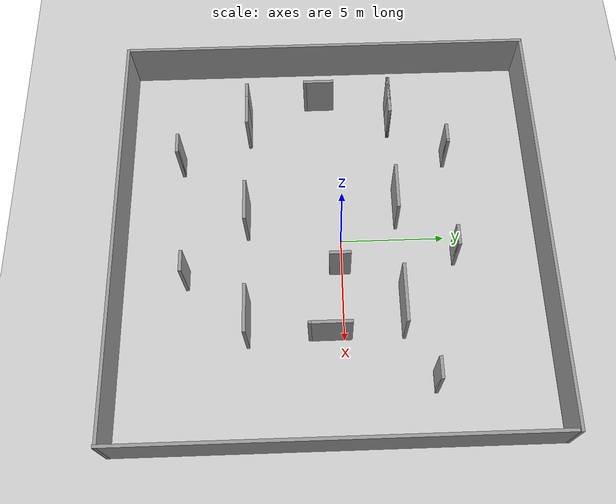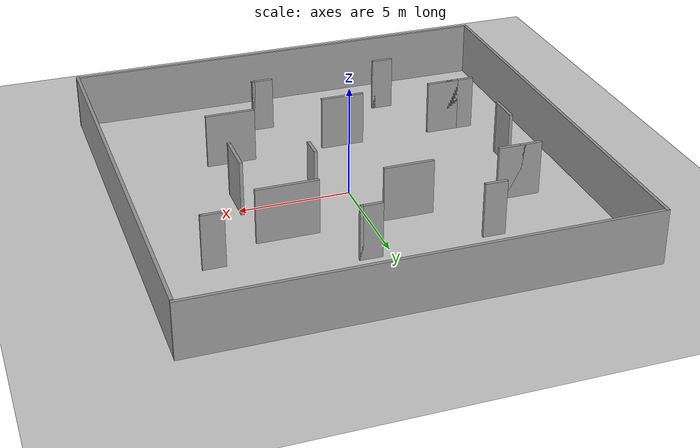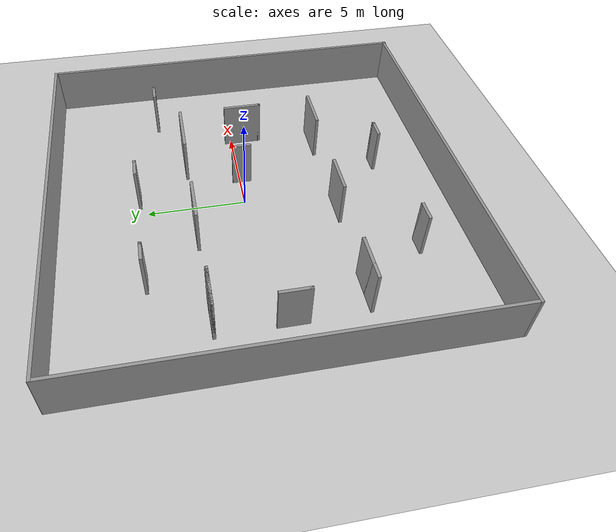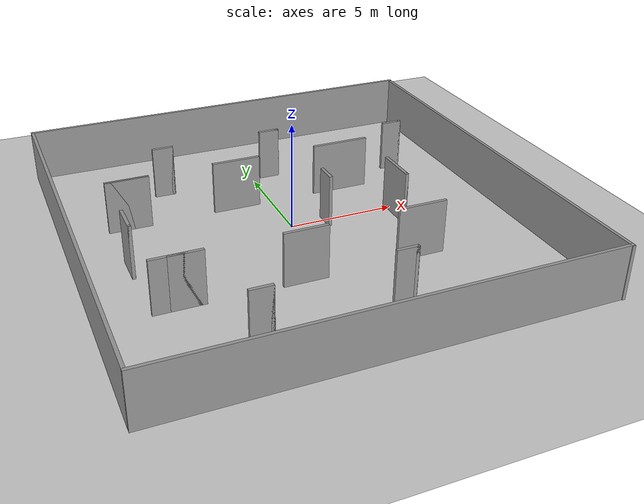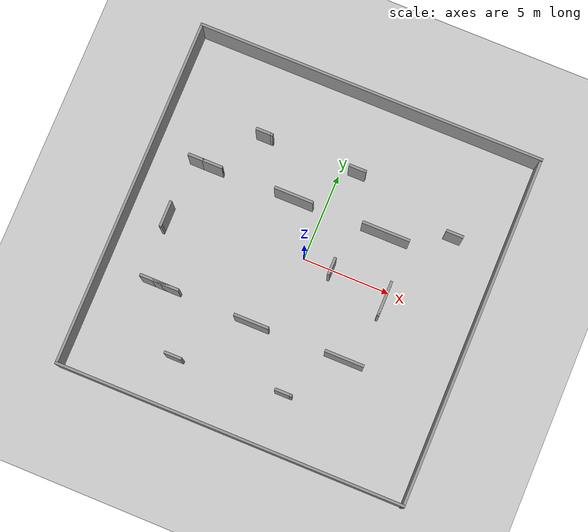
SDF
<sdf version="1.7">
 <world name="default">
  <light name="sun" type="directional">
   <pose>0 0 10 0 -0 0</pose>
   <diffuse>0.8 0.8 0.8 1</diffuse>
   <specular>0.2 0.2 0.2 1</specular>
   <attenuation>
    <range>1000</range>
    <constant>0.9</constant>
    <linear>0.01</linear>
    <quadratic>0.001</quadratic>
   </attenuation>
   <direction>-0.5 0.1 -0.9</direction>
   <spot><inner_angle>0</inner_angle><outer_angle>0</outer_angle><falloff>0</falloff></spot>
  </light>
  <model name="ground_plane">
   <static>1</static>
   <link name="link">
    <collision name="collision">
     <geometry><plane><normal>0 0 1</normal><size>100 100</size></plane></geometry>
     <surface>
      <contact><collide_bitmask>65535</collide_bitmask></contact>
      <friction><ode><mu>100</mu><mu2>50</mu2></ode></friction>
     </surface>
    </collision>
    <visual name="visual">
     <cast_shadows>0</cast_shadows>
     <geometry><plane><normal>0 0 1</normal><size>100 100</size></plane></geometry>
     <material>
      <script><uri>file://media/materials/scripts/gazebo.material</uri><name>Gazebo/Grey</name></script>
     </material>
    </visual>
   </link>
  </model>
  <gravity>0 0 -9.8</gravity>
  <magnetic_field>6e-06 2.3e-05 -4.2e-05</magnetic_field>
  <atmosphere type="adiabatic"/>
  <physics type="ode">
   <max_step_size>0.001</max_step_size>
   <real_time_factor>1</real_time_factor>
   <real_time_update_rate>1000</real_time_update_rate>
  </physics>
  <scene><ambient>0.4 0.4 0.4 1</ambient><background>0.7 0.7 0.7 1</background><shadows>1</shadows></scene>
  <spherical_coordinates>
   <surface_model>EARTH_WGS84</surface_model>
   <latitude_deg>0</latitude_deg>
   <longitude_deg>0</longitude_deg>
   <elevation>0</elevation>
   <heading_deg>0</heading_deg>
  </spherical_coordinates>
  <model name="wall_20m">
   <pose>0 10 0 0 -0 0</pose>
   <link name="Wall_0">
    <collision name="Wall_0_Collision">
     <geometry><box><size>20 0.15 2.5</size></box></geometry>
     <pose>0 0 1.25 0 -0 0</pose>
    </collision>
    <visual name="Wall_0_Visual">
     <pose>0 0 1.25 0 -0 0</pose>
     <geometry><box><size>20 0.15 2.5</size></box></geometry>
     <material>
      <script><uri>file://media/materials/scripts/gazebo.material</uri><name>Gazebo/Grey</name></script>
      <ambient>1 1 1 1</ambient>
     </material>
     <meta><layer>0</layer></meta>
    </visual>
    <pose>0 -0.4525 0 0 -0 0</pose>
   </link>
   <static>1</static>
  </model>
  <model name="wall_20m_0">
   <pose>0 -10 0 0 -0 0</pose>
   <link name="Wall_0">
    <collision name="Wall_0_Collision">
     <geometry><box><size>20 0.15 2.5</size></box></geometry>
     <pose>0 0 1.25 0 -0 0</pose>
    </collision>
    <visual name="Wall_0_Visual">
     <pose>0 0 1.25 0 -0 0</pose>
     <geometry><box><size>20 0.15 2.5</size></box></geometry>
     <material>
      <script><uri>file://media/materials/scripts/gazebo.material</uri><name>Gazebo/Grey</name></script>
      <ambient>1 1 1 1</ambient>
     </material>
     <meta><layer>0</layer></meta>
    </visual>
    <pose>0 -0.4525 0 0 -0 0</pose>
   </link>
   <static>1</static>
  </model>
  <model name="wall_20m_1">
   <pose>10.371 -0.564744 0 0 0 -1.5708</pose>
   <link name="Wall_0">
    <collision name="Wall_0_Collision">
     <geometry><box><size>20 0.15 2.5</size></box></geometry>
     <pose>0 0 1.25 0 -0 0</pose>
    </collision>
    <visual name="Wall_0_Visual">
     <pose>0 0 1.25 0 -0 0</pose>
     <geometry><box><size>20 0.15 2.5</size></box></geometry>
     <material>
      <script><uri>file://media/materials/scripts/gazebo.material</uri><name>Gazebo/Grey</name></script>
      <ambient>1 1 1 1</ambient>
     </material>
     <meta><layer>0</layer></meta>
    </visual>
    <pose>0 -0.4525 0 0 -0 0</pose>
   </link>
   <static>1</static>
  </model>
  <model name="wall_20m_2">
   <pose>-10.3827 -0.389154 0 0 -0 1.5708</pose>
   <link name="Wall_0">
    <collision name="Wall_0_Collision">
     <geometry><box><size>20 0.15 2.5</size></box></geometry>
     <pose>0 0 1.25 0 -0 0</pose>
    </collision>
    <visual name="Wall_0_Visual">
     <pose>0 0 1.25 0 -0 0</pose>
     <geometry><box><size>20 0.15 2.5</size></box></geometry>
     <material>
      <script><uri>file://media/materials/scripts/gazebo.material</uri><name>Gazebo/Grey</name></script>
      <ambient>1 1 1 1</ambient>
     </material>
     <meta><layer>0</layer></meta>
    </visual>
    <pose>0 -0.4525 0 0 -0 0</pose>
   </link>
   <static>1</static>
  </model>
  <model name="maza">
   <pose>-1.29496 -0.87046 0 0 -0 0</pose>
   <link name="Wall_17">
    <collision name="Wall_17_Collision">
     <geometry><box><size>2.25 0.15 2.5</size></box></geometry>
     <pose>0 0 1.25 0 -0 0</pose>
    </collision>
    <visual name="Wall_17_Visual">
     <pose>0 0 1.25 0 -0 0</pose>
     <geometry><box><size>2.25 0.15 2.5</size></box></geometry>
     <material>
      <script><uri>file://media/materials/scripts/gazebo.material</uri><name>Gazebo/Grey</name></script>
      <ambient>1 1 1 1</ambient>
     </material>
     <meta><layer>0</layer></meta>
    </visual>
    <pose>5.41888 -3.56567 0 0 -0 3.14159</pose>
   </link>
   <link name="Wall_19">
    <collision name="Wall_19_Collision">
     <geometry><box><size>2 0.15 2.5</size></box></geometry>
     <pose>0 0 1.25 0 -0 0</pose>
    </collision>
    <visual name="Wall_19_Visual">
     <pose>0 0 1.25 0 -0 0</pose>
     <geometry><box><size>2 0.15 2.5</size></box></geometry>
     <material>
      <script><uri>file://media/materials/scripts/gazebo.material</uri><name>Gazebo/Grey</name></script>
      <ambient>1 1 1 1</ambient>
     </material>
     <meta><layer>0</layer></meta>
    </visual>
    <pose>0.079669 -3.61193 0 0 -0 3.14159</pose>
   </link>
   <link name="Wall_21">
    <collision name="Wall_21_Collision">
     <geometry><box><size>1.5 0.15 2.5</size></box></geometry>
     <pose>0 0 1.25 0 -0 0</pose>
    </collision>
    <visual name="Wall_21_Visual">
     <pose>0 0 1.25 0 -0 0</pose>
     <geometry><box><size>1.5 0.15 2.5</size></box></geometry>
     <material>
      <script><uri>file://media/materials/scripts/gazebo.material</uri><name>Gazebo/Grey</name></script>
      <ambient>1 1 1 1</ambient>
     </material>
     <meta><layer>0</layer></meta>
    </visual>
    <pose>-4.88942 -3.54254 0 0 -0 0</pose>
   </link>
   <link name="Wall_22">
    <collision name="Wall_22_Collision">
     <geometry><box><size>2.25 0.15 2.5</size></box></geometry>
     <pose>0 0 1.25 0 -0 0</pose>
    </collision>
    <visual name="Wall_22_Visual">
     <pose>0 0 1.25 0 -0 0</pose>
     <geometry><box><size>2.25 0.15 2.5</size></box></geometry>
     <material>
      <script><uri>file://media/materials/scripts/gazebo.material</uri><name>Gazebo/Grey</name></script>
      <ambient>1 1 1 1</ambient>
     </material>
     <meta><layer>0</layer></meta>
    </visual>
    <pose>-5.26442 -3.54254 0 0 -0 3.14159</pose>
   </link>
   <link name="Wall_26">
    <collision name="Wall_26_Collision">
     <geometry><box><size>2 0.15 2.5</size></box></geometry>
     <pose>0 0 1.25 0 -0 0</pose>
    </collision>
    <visual name="Wall_26_Visual">
     <pose>0 0 1.25 0 -0 0</pose>
     <geometry><box><size>2 0.15 2.5</size></box></geometry>
     <material>
      <script><uri>file://media/materials/scripts/gazebo.material</uri><name>Gazebo/Grey</name></script>
      <ambient>1 1 1 1</ambient>
     </material>
     <meta><layer>0</layer></meta>
    </visual>
    <pose>-5.54388 3.49056 0 0 -0 3.14159</pose>
   </link>
   <link name="Wall_27">
    <collision name="Wall_27_Collision">
     <geometry><box><size>2 0.15 2.5</size></box></geometry>
     <pose>0 0 1.25 0 -0 0</pose>
    </collision>
    <visual name="Wall_27_Visual">
     <pose>0 0 1.25 0 -0 0</pose>
     <geometry><box><size>2 0.15 2.5</size></box></geometry>
     <material>
      <script><uri>file://media/materials/scripts/gazebo.material</uri><name>Gazebo/Grey</name></script>
      <ambient>1 1 1 1</ambient>
     </material>
     <meta><layer>0</layer></meta>
    </visual>
    <pose>-5.54388 3.49056 0 0 -0 0</pose>
   </link>
   <link name="Wall_29">
    <collision name="Wall_29_Collision">
     <geometry><box><size>2.25 0.15 2.5</size></box></geometry>
     <pose>0 0 1.25 0 -0 0</pose>
    </collision>
    <visual name="Wall_29_Visual">
     <pose>0 0 1.25 0 -0 0</pose>
     <geometry><box><size>2.25 0.15 2.5</size></box></geometry>
     <material>
      <script><uri>file://media/materials/scripts/gazebo.material</uri><name>Gazebo/Grey</name></script>
      <ambient>1 1 1 1</ambient>
     </material>
     <meta><layer>0</layer></meta>
    </visual>
    <pose>-0.409651 3.57147 0 0 -0 3.14159</pose>
   </link>
   <link name="Wall_31">
    <collision name="Wall_31_Collision">
     <geometry><box><size>2.75 0.15 2.5</size></box></geometry>
     <pose>0 0 1.25 0 -0 0</pose>
    </collision>
    <visual name="Wall_31_Visual">
     <pose>0 0 1.25 0 -0 0</pose>
     <geometry><box><size>2.75 0.15 2.5</size></box></geometry>
     <material>
      <script><uri>file://media/materials/scripts/gazebo.material</uri><name>Gazebo/Grey</name></script>
      <ambient>1 1 1 1</ambient>
     </material>
     <meta><layer>0</layer></meta>
    </visual>
    <pose>4.92322 3.61193 0 0 -0 3.14159</pose>
   </link>
   <link name="Wall_36">
    <collision name="Wall_36_Collision">
     <geometry><box><size>1.5 0.15 2.5</size></box></geometry>
     <pose>0 0 1.25 0 -0 0</pose>
    </collision>
    <visual name="Wall_36_Visual">
     <pose>0 0 1.25 0 -0 0</pose>
     <geometry><box><size>1.5 0.15 2.5</size></box></geometry>
     <material>
      <script><uri>file://media/materials/scripts/gazebo.material</uri><name>Gazebo/Grey</name></script>
      <ambient>1 1 1 1</ambient>
     </material>
     <meta><layer>0</layer></meta>
    </visual>
    <pose>-6.40155 0.010652 0 0 -0 -1.5708</pose>
   </link>
   <link name="Wall_37">
    <collision name="Wall_37_Collision">
     <geometry><box><size>0.15 0.15 2.5</size></box></geometry>
     <pose>0 0 1.25 0 -0 0</pose>
    </collision>
    <visual name="Wall_37_Visual">
     <pose>0 0 1.25 0 -0 0</pose>
     <geometry><box><size>0.15 0.15 2.5</size></box></geometry>
     <material>
      <script><uri>file://media/materials/scripts/gazebo.material</uri><name>Gazebo/Grey</name></script>
      <ambient>1 1 1 1</ambient>
     </material>
     <meta><layer>0</layer></meta>
    </visual>
    <pose>-6.40155 -0.664348 0 0 -0 0</pose>
   </link>
   <link name="Wall_39">
    <collision name="Wall_39_Collision">
     <geometry><box><size>1 0.15 2.5</size></box></geometry>
     <pose>0 0 1.25 0 -0 0</pose>
    </collision>
    <visual name="Wall_39_Visual">
     <pose>0 0 1.25 0 -0 0</pose>
     <geometry><box><size>1 0.15 2.5</size></box></geometry>
     <material>
      <script><uri>file://media/materials/scripts/gazebo.material</uri><name>Gazebo/Grey</name></script>
      <ambient>1 1 1 1</ambient>
     </material>
     <meta><layer>0</layer></meta>
    </visual>
    <pose>2.93512 0.76485 0 0 -0 1.5708</pose>
   </link>
   <link name="Wall_41">
    <collision name="Wall_41_Collision">
     <geometry><box><size>2 0.15 2.5</size></box></geometry>
     <pose>0 0 1.25 0 -0 0</pose>
    </collision>
    <visual name="Wall_41_Visual">
     <pose>0 0 1.25 0 -0 0</pose>
     <geometry><box><size>2 0.15 2.5</size></box></geometry>
     <material>
      <script><uri>file://media/materials/scripts/gazebo.material</uri><name>Gazebo/Grey</name></script>
      <ambient>1 1 1 1</ambient>
     </material>
     <meta><layer>0</layer></meta>
    </visual>
    <pose>6.20694 0.212856 0 0 -0 -1.5708</pose>
   </link>
   <link name="Wall_42">
    <collision name="Wall_42_Collision">
     <geometry><box><size>0.15 0.15 2.5</size></box></geometry>
     <pose>0 0 1.25 0 -0 0</pose>
    </collision>
    <visual name="Wall_42_Visual">
     <pose>0 0 1.25 0 -0 0</pose>
     <geometry><box><size>0.15 0.15 2.5</size></box></geometry>
     <material>
      <script><uri>file://media/materials/scripts/gazebo.material</uri><name>Gazebo/Grey</name></script>
      <ambient>1 1 1 1</ambient>
     </material>
     <meta><layer>0</layer></meta>
    </visual>
    <pose>6.20694 -0.712144 0 0 -0 0</pose>
   </link>
   <static>1</static>
  </model>
  <model name="wall_1m">
   <pose>3.06655 7.99671 0 0 -0 0</pose>
   <link name="Wall_2">
    <collision name="Wall_2_Collision">
     <geometry><box><size>1 0.15 2.5</size></box></geometry>
     <pose>0 0 1.25 0 -0 0</pose>
    </collision>
    <visual name="Wall_2_Visual">
     <pose>0 0 1.25 0 -0 0</pose>
     <geometry><box><size>1 0.15 2.5</size></box></geometry>
     <material>
      <script><uri>file://media/materials/scripts/gazebo.material</uri><name>Gazebo/Grey</name></script>
      <ambient>1 1 1 1</ambient>
     </material>
     <meta><layer>0</layer></meta>
    </visual>
    <pose>-2.13692 -2.64544 0 0 -0 0</pose>
   </link>
   <link name="Wall_3">
    <collision name="Wall_3_Collision">
     <geometry><box><size>0.15 0.15 2.5</size></box></geometry>
     <pose>0 0 1.25 0 -0 0</pose>
    </collision>
    <visual name="Wall_3_Visual">
     <pose>0 0 1.25 0 -0 0</pose>
     <geometry><box><size>0.15 0.15 2.5</size></box></geometry>
     <material>
      <script><uri>file://media/materials/scripts/gazebo.material</uri><name>Gazebo/Grey</name></script>
      <ambient>1 1 1 1</ambient>
     </material>
     <meta><layer>0</layer></meta>
    </visual>
    <pose>-1.71192 -2.64544 0 0 -0 0</pose>
   </link>
   <static>1</static>
  </model>
  <model name="wall_1m_0">
   <pose>-2.35681 7.95812 0 0 -0 0</pose>
   <link name="Wall_2">
    <collision name="Wall_2_Collision">
     <geometry><box><size>1 0.15 2.5</size></box></geometry>
     <pose>0 0 1.25 0 -0 0</pose>
    </collision>
    <visual name="Wall_2_Visual">
     <pose>0 0 1.25 0 -0 0</pose>
     <geometry><box><size>1 0.15 2.5</size></box></geometry>
     <material>
      <script><uri>file://media/materials/scripts/gazebo.material</uri><name>Gazebo/Grey</name></script>
      <ambient>1 1 1 1</ambient>
     </material>
     <meta><layer>0</layer></meta>
    </visual>
    <pose>-2.13692 -2.64544 0 0 -0 0</pose>
   </link>
   <link name="Wall_3">
    <collision name="Wall_3_Collision">
     <geometry><box><size>0.15 0.15 2.5</size></box></geometry>
     <pose>0 0 1.25 0 -0 0</pose>
    </collision>
    <visual name="Wall_3_Visual">
     <pose>0 0 1.25 0 -0 0</pose>
     <geometry><box><size>0.15 0.15 2.5</size></box></geometry>
     <material>
      <script><uri>file://media/materials/scripts/gazebo.material</uri><name>Gazebo/Grey</name></script>
      <ambient>1 1 1 1</ambient>
     </material>
     <meta><layer>0</layer></meta>
    </visual>
    <pose>-1.71192 -2.64544 0 0 -0 0</pose>
   </link>
   <static>1</static>
  </model>
  <model name="wall_1m_1">
   <pose>9.23013 6.65714 0 0 -0 0</pose>
   <link name="Wall_2">
    <collision name="Wall_2_Collision">
     <geometry><box><size>1 0.15 2.5</size></box></geometry>
     <pose>0 0 1.25 0 -0 0</pose>
    </collision>
    <visual name="Wall_2_Visual">
     <pose>0 0 1.25 0 -0 0</pose>
     <geometry><box><size>1 0.15 2.5</size></box></geometry>
     <material>
      <script><uri>file://media/materials/scripts/gazebo.material</uri><name>Gazebo/Grey</name></script>
      <ambient>1 1 1 1</ambient>
     </material>
     <meta><layer>0</layer></meta>
    </visual>
    <pose>-2.13692 -2.64544 0 0 -0 0</pose>
   </link>
   <link name="Wall_3">
    <collision name="Wall_3_Collision">
     <geometry><box><size>0.15 0.15 2.5</size></box></geometry>
     <pose>0 0 1.25 0 -0 0</pose>
    </collision>
    <visual name="Wall_3_Visual">
     <pose>0 0 1.25 0 -0 0</pose>
     <geometry><box><size>0.15 0.15 2.5</size></box></geometry>
     <material>
      <script><uri>file://media/materials/scripts/gazebo.material</uri><name>Gazebo/Grey</name></script>
      <ambient>1 1 1 1</ambient>
     </material>
     <meta><layer>0</layer></meta>
    </visual>
    <pose>-1.71192 -2.64544 0 0 -0 0</pose>
   </link>
   <static>1</static>
  </model>
  <model name="wall_1m_2">
   <pose>3.94642 -4.68668 0 0 -0 0</pose>
   <link name="Wall_2">
    <collision name="Wall_2_Collision">
     <geometry><box><size>1 0.15 2.5</size></box></geometry>
     <pose>0 0 1.25 0 -0 0</pose>
    </collision>
    <visual name="Wall_2_Visual">
     <pose>0 0 1.25 0 -0 0</pose>
     <geometry><box><size>1 0.15 2.5</size></box></geometry>
     <material>
      <script><uri>file://media/materials/scripts/gazebo.material</uri><name>Gazebo/Grey</name></script>
      <ambient>1 1 1 1</ambient>
     </material>
     <meta><layer>0</layer></meta>
    </visual>
    <pose>-2.13692 -2.64544 0 0 -0 0</pose>
   </link>
   <link name="Wall_3">
    <collision name="Wall_3_Collision">
     <geometry><box><size>0.15 0.15 2.5</size></box></geometry>
     <pose>0 0 1.25 0 -0 0</pose>
    </collision>
    <visual name="Wall_3_Visual">
     <pose>0 0 1.25 0 -0 0</pose>
     <geometry><box><size>0.15 0.15 2.5</size></box></geometry>
     <material>
      <script><uri>file://media/materials/scripts/gazebo.material</uri><name>Gazebo/Grey</name></script>
      <ambient>1 1 1 1</ambient>
     </material>
     <meta><layer>0</layer></meta>
    </visual>
    <pose>-1.71192 -2.64544 0 0 -0 0</pose>
   </link>
   <static>1</static>
  </model>
  <model name="wall_1m_3">
   <pose>-2.22872 -5.09891 0 0 -0 0</pose>
   <link name="Wall_2">
    <collision name="Wall_2_Collision">
     <geometry><box><size>1 0.15 2.5</size></box></geometry>
     <pose>0 0 1.25 0 -0 0</pose>
    </collision>
    <visual name="Wall_2_Visual">
     <pose>0 0 1.25 0 -0 0</pose>
     <geometry><box><size>1 0.15 2.5</size></box></geometry>
     <material>
      <script><uri>file://media/materials/scripts/gazebo.material</uri><name>Gazebo/Grey</name></script>
      <ambient>1 1 1 1</ambient>
     </material>
     <meta><layer>0</layer></meta>
    </visual>
    <pose>-2.13692 -2.64544 0 0 -0 0</pose>
   </link>
   <link name="Wall_3">
    <collision name="Wall_3_Collision">
     <geometry><box><size>0.15 0.15 2.5</size></box></geometry>
     <pose>0 0 1.25 0 -0 0</pose>
    </collision>
    <visual name="Wall_3_Visual">
     <pose>0 0 1.25 0 -0 0</pose>
     <geometry><box><size>0.15 0.15 2.5</size></box></geometry>
     <material>
      <script><uri>file://media/materials/scripts/gazebo.material</uri><name>Gazebo/Grey</name></script>
      <ambient>1 1 1 1</ambient>
     </material>
     <meta><layer>0</layer></meta>
    </visual>
    <pose>-1.71192 -2.64544 0 0 -0 0</pose>
   </link>
   <static>1</static>
  </model>
 </world>
</sdf>
